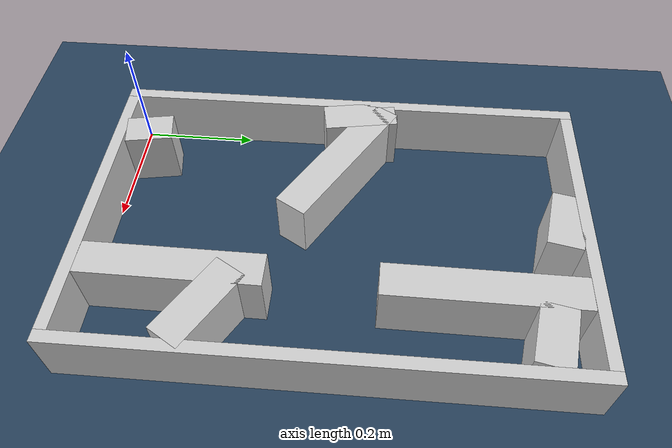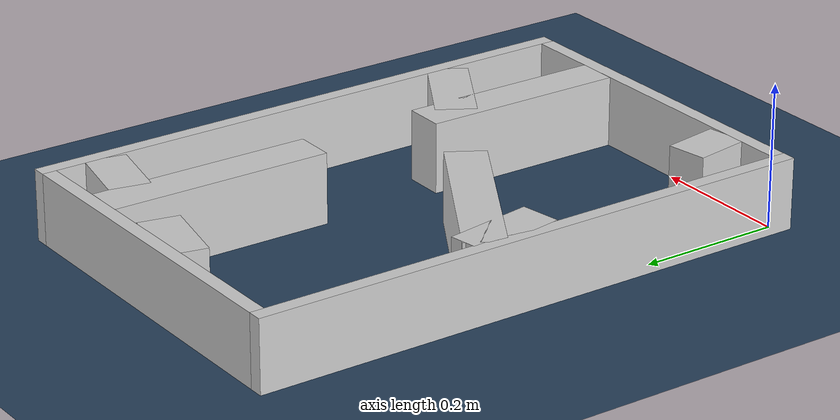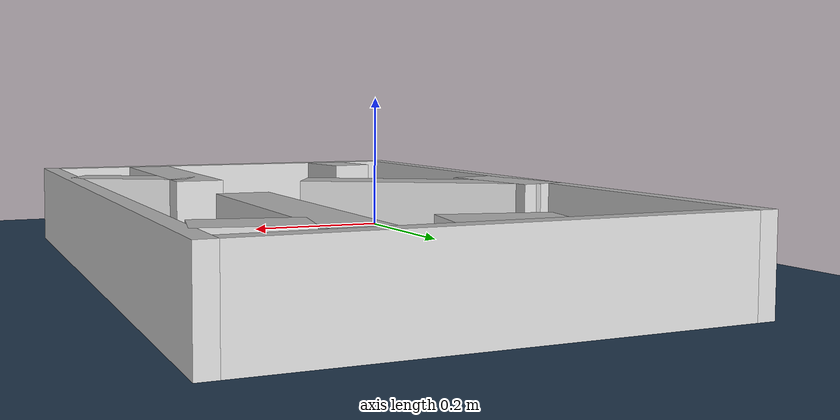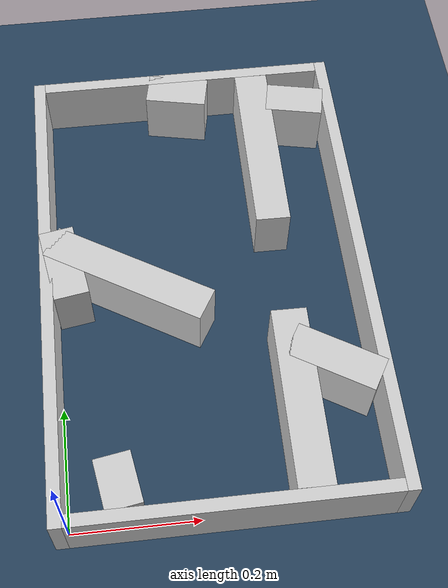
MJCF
<?xml version="1.0" ?>
<mujoco model="generated_real_template">
  <compiler angle="degree"/>
  <option timestep="0.002" integrator="implicitfast" iterations="100" cone="elliptic"/>
  <default>
    <geom density="1"/>
  </default>
  <asset>
    <texture builtin="gradient" height="3072" rgb1="0.3 0.5 0.7" rgb2="0 0 0" type="skybox" width="512"/>
    <texture builtin="checker" height="300" mark="edge" markrgb="0.8 0.8 0.8" name="groundplane" rgb1="0.2 0.3 0.4" rgb2="0.1 0.2 0.3" type="2d" width="300"/>
    <material name="groundplane" reflectance="0.2" texrepeat="5 5" texture="groundplane" texuniform="true"/>
  </asset>
  <worldbody>
    <light dir="0 0 -1" directional="true" pos="0 0 1.5"/>
    <geom name="floor" type="plane" condim="4" friction="0.5 0.005 0.001" material="groundplane" size="0 0 0.05"/>
    <body name="walls">
      <geom name="wall_boundary_left" type="box" condim="4" friction="1.0 0.005 0.0001" rgba="0.8 0.8 0.8 1" pos="-0.010000 0.387500 0.050000" euler="0 0 0.000000" size="0.010000 0.407500 0.050000"/>
      <geom name="wall_boundary_right" type="box" condim="4" friction="1.0 0.005 0.0001" rgba="0.8 0.8 0.8 1" pos="0.500000 0.387500 0.050000" euler="0 0 0.000000" size="0.010000 0.407500 0.050000"/>
      <geom name="wall_boundary_bottom" type="box" condim="4" friction="1.0 0.005 0.0001" rgba="0.8 0.8 0.8 1" pos="0.245000 -0.010000 0.050000" euler="0 0 0.000000" size="0.245000 0.010000 0.050000"/>
      <geom name="wall_boundary_top" type="box" condim="4" friction="1.0 0.005 0.0001" rgba="0.8 0.8 0.8 1" pos="0.245000 0.785000 0.050000" euler="0 0 0.000000" size="0.245000 0.010000 0.050000"/>
      <geom name="wall_inner_1_1" type="box" condim="4" friction="1.0 0.005 0.0001" rgba="0.8 0.8 0.8 1" pos="0.120621 0.384404 0.050000" euler="0 0 -30.993523" size="0.140710 0.028500 0.050000"/>
      <geom name="wall_inner_1_2" type="box" condim="4" friction="1.0 0.005 0.0001" rgba="0.8 0.8 0.8 1" pos="0.426928 0.200403 0.050000" euler="0 0 -30.993523" size="0.073577 0.028500 0.050000"/>
      <geom name="wall_inner_2_1" type="box" condim="4" friction="1.0 0.005 0.0001" rgba="0.8 0.8 0.8 1" pos="0.235171 0.756427 0.050000" euler="0 0 -11.756513" size="0.052367 0.028500 0.050000"/>
      <geom name="wall_inner_2_2" type="box" condim="4" friction="1.0 0.005 0.0001" rgba="0.8 0.8 0.8 1" pos="0.441533 0.713479 0.050000" euler="0 0 -11.756513" size="0.049505 0.028500 0.050000"/>
      <geom name="wall_inner_3_1" type="box" condim="4" friction="1.0 0.005 0.0001" rgba="0.8 0.8 0.8 1" pos="0.081996 0.040029 0.050000" euler="0 0 99.599709" size="0.040598 0.028500 0.050000"/>
      <geom name="wall_inner_3_2" type="box" condim="4" friction="1.0 0.005 0.0001" rgba="0.8 0.8 0.8 1" pos="0.018795 0.413709 0.050000" euler="0 0 99.599709" size="0.064120 0.028500 0.050000"/>
      <geom name="wall_inner_4_1" type="box" condim="4" friction="1.0 0.005 0.0001" rgba="0.8 0.8 0.8 1" pos="0.364847 0.144805 0.050000" euler="0 0 89.500180" size="0.144810 0.028500 0.050000"/>
      <geom name="wall_inner_4_2" type="box" condim="4" friction="1.0 0.005 0.0001" rgba="0.8 0.8 0.8 1" pos="0.368977 0.618275 0.050000" euler="0 0 89.500180" size="0.156731 0.028500 0.050000"/>
    </body>
  </worldbody>
</mujoco>
